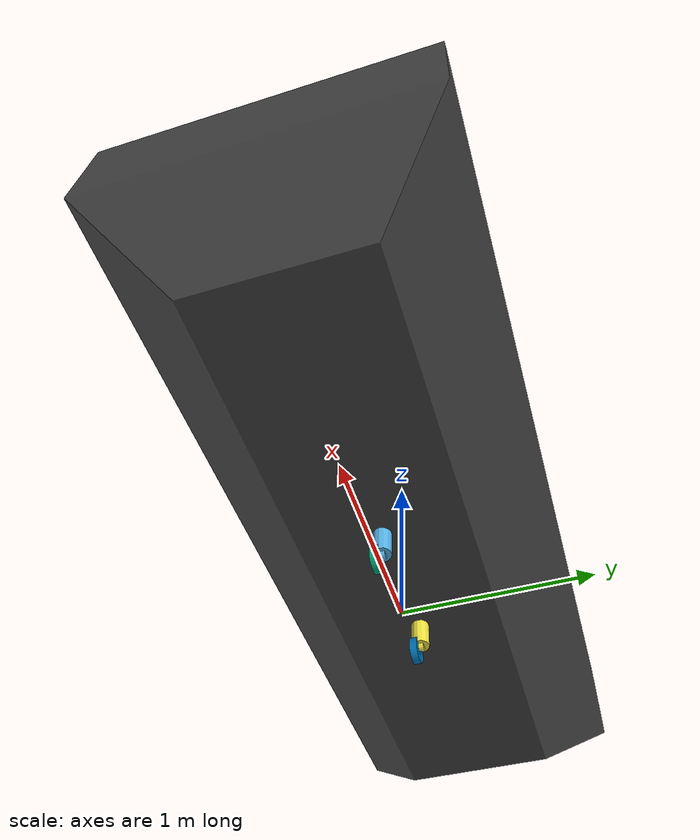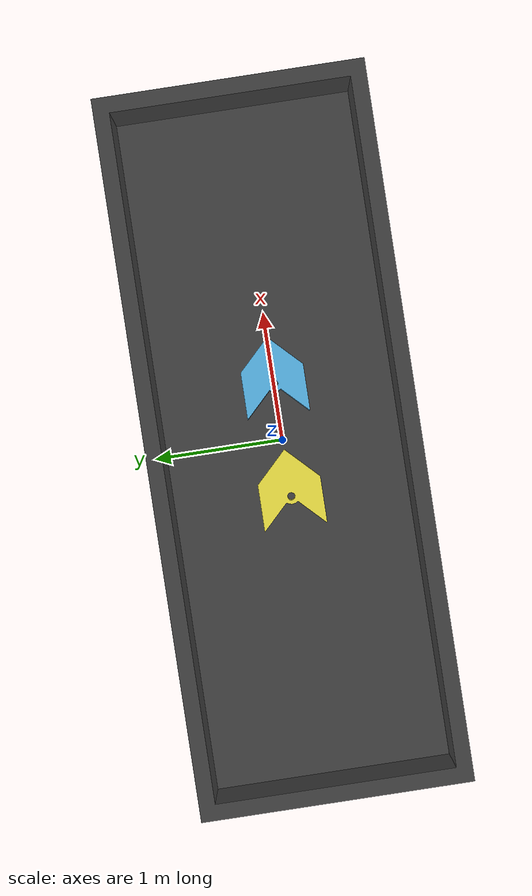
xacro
<?xml version="1.0"?>
<robot xmlns:xacro="http://wiki.ros.org/xacro" name="robot">

    <xacro:include filename="$(find ciima_description)/xacro/ros2_control.xacro"/>
    <xacro:include filename="$(find ciima_description)/xacro/ciima_description.xacro"/>

    <xacro:ros2_control_system/>
    <xacro:ciima_robot prefix="fake_robot"/>

</robot>

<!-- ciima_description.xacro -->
<robot xmlns:xacro="http://wiki.ros.org/xacro">

  <xacro:macro name="ciima_robot" params="prefix">

    <!-- BASE LINK -->

    <link name="${prefix}_base_link">

      <visual>
        <origin xyz="0 0 0.15" rpy="0 0 -1.5708"/>
        <geometry>
          <mesh filename="package://ciima_description/meshes/base_link.STL"/>
        </geometry>
        <material name="chassis_material">
          <color rgba="0.25 0.25 0.25 1.0"/>
        </material>
      </visual>

      <collision>
        <origin xyz="0 0 0.15" rpy="0 0 0"/>
        <geometry>
          <box size="0.80 0.50 0.30"/>
        </geometry>
      </collision>

    </link>

    <!-- FRONT STEER LINK -->

    <link name="${prefix}_front_steer_link">

      <visual>
        <origin xyz="0 0 0" rpy="1.5708 0 1.5708"/>
        <geometry>
          <mesh filename="package://ciima_description/meshes/front_steer_link.STL"/>
        </geometry>
      </visual>

      <collision>
        <origin xyz="0 0 0" rpy="0 0 0"/>
        <geometry>
          <mesh filename="package://ciima_description/meshes/front_steer_link.STL"/>
        </geometry>
      </collision>

    </link>

    <!-- FRONT STEER JOINT -->

    <joint
      name="${prefix}_front_steer_joint"
      type="continuous">

      <origin
        xyz="0.36 0 0.0475"
        rpy="0.0 0 3.14159"/>

      <parent
        link="${prefix}_base_link"/>

      <child
        link="${prefix}_front_steer_link"/>

      <axis
        xyz="0 0 1"/>

      <limit
        lower="0"
        upper="0"
        effort="0"
        velocity="0"/>

    </joint>

    <!-- FRONT WHEEL -->

    <link name="${prefix}_front_wheel_link">

      <visual>
        <origin xyz="0 0 0" rpy="0 0 0"/>
        <geometry>
          <mesh filename="package://ciima_description/meshes/front_wheel_link.STL"/>
        </geometry>
      </visual>

      <collision>
        <origin xyz="0 0 0" rpy="0 0 0"/>
        <geometry>
          <mesh filename="package://ciima_description/meshes/front_wheel_link.STL"/>
        </geometry>
      </collision>

    </link>

    <!-- FRONT WHEEL JOINT -->

    <joint
      name="${prefix}_front_wheel_joint"
      type="continuous">

      <origin
        xyz="0 0.025 0"
        rpy="1.5708 -0.57181 0"/>

      <parent
        link="${prefix}_front_steer_link"/>

      <child
        link="${prefix}_front_wheel_link"/>

      <axis
        xyz="0 0 1"/>

    </joint>

    <!-- REAR STEER LINK -->

    <link name="${prefix}_rear_steer_link">

      <visual>
        <origin xyz="0 0 0" rpy="1.5708 0 1.5708"/>
        <geometry>
          <mesh filename="package://ciima_description/meshes/rear_steer_link.STL"/>
        </geometry>
      </visual>

      <collision>
        <origin xyz="0 0 0" rpy="0 0 0"/>
        <geometry>
          <mesh filename="package://ciima_description/meshes/rear_steer_link.STL"/>
        </geometry>
      </collision>

    </link>

    <!-- REAR STEER JOINT -->

    <joint
      name="${prefix}_rear_steer_joint"
      type="continuous">

      <origin
        xyz="-0.36 0 0.0475"
        rpy="0.0 0 3.14159"/>

      <parent
        link="${prefix}_base_link"/>

      <child
        link="${prefix}_rear_steer_link"/>

      <axis
        xyz="0 0 1"/>

      <limit
        lower="0"
        upper="0"
        effort="0"
        velocity="0"/>

    </joint>

    <!-- REAR WHEEL LINK -->

    <link name="${prefix}_rear_wheel_link">

      <visual>
        <origin xyz="0 0 0" rpy="0 0 0"/>
        <geometry>
          <mesh filename="package://ciima_description/meshes/rear_wheel_link.STL"/>
        </geometry>
      </visual>

      <collision>
        <origin xyz="0 0 0" rpy="0 0 0"/>
        <geometry>
          <mesh filename="package://ciima_description/meshes/rear_wheel_link.STL"/>
        </geometry>
      </collision>

    </link>

    <!-- REAR WHEEL JOINT -->

    <joint
      name="${prefix}_rear_wheel_joint"
      type="continuous">

      <origin
        xyz="0 0.025 0"
        rpy="1.5708 0.56637 0.0"/>

      <parent
        link="${prefix}_rear_steer_link"/>

      <child
        link="${prefix}_rear_wheel_link"/>

      <axis
        xyz="0 0 1"/>

    </joint>

  </xacro:macro>

</robot>
